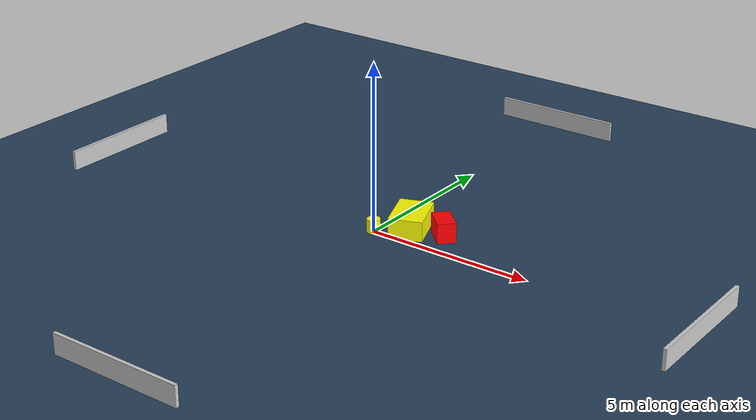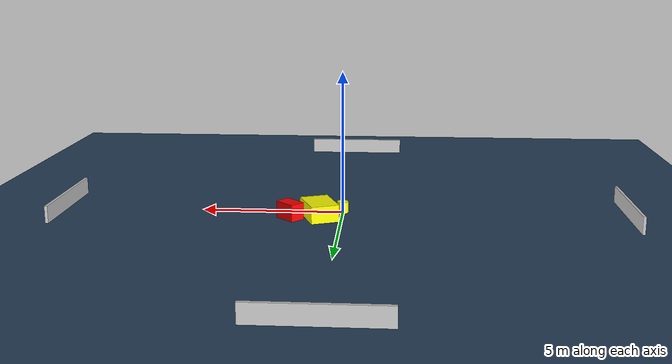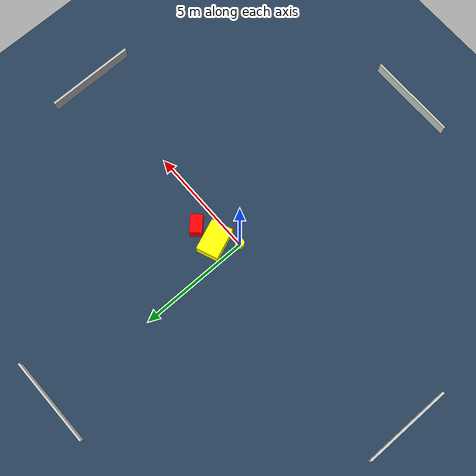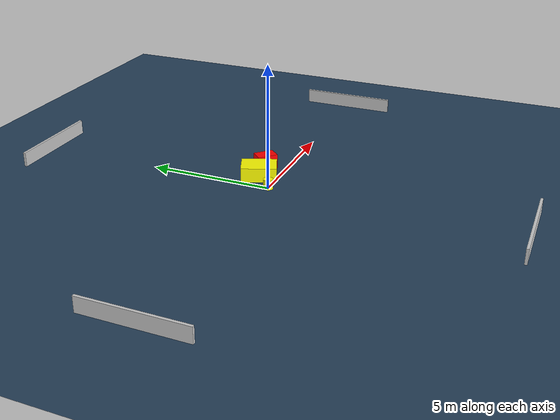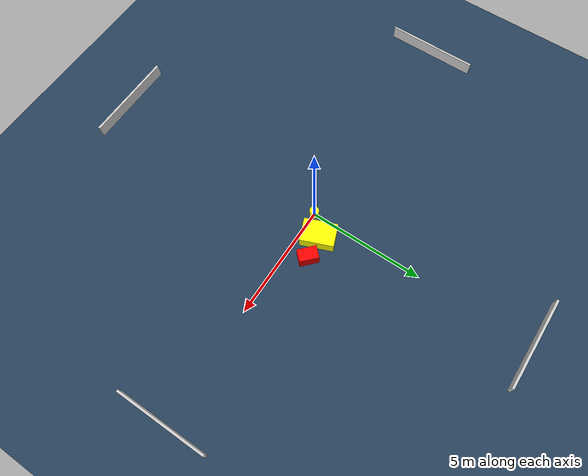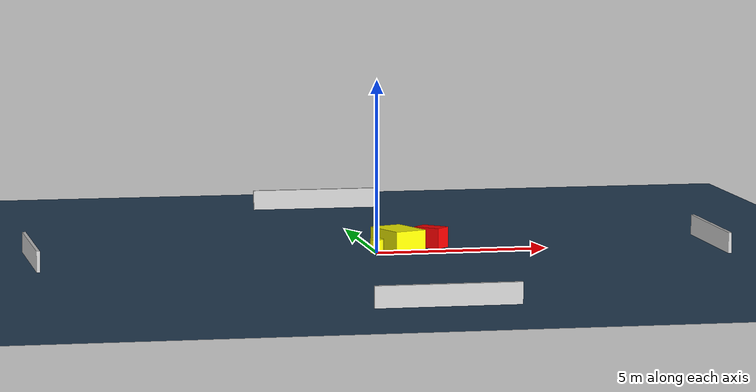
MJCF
<?xml version="1.0" ?>
<mujoco model="generated_environment">
  <option timestep="0.01" integrator="RK4" cone="elliptic"/>
  <default>
    <geom density="1"/>
  </default>
  <asset>
    <texture builtin="gradient" height="3072" name="skybox" rgb1="0.3 0.5 0.7" rgb2="0 0 0" type="skybox" width="512"/>
    <texture builtin="checker" height="300" name="groundplane" rgb1="0.2 0.3 0.4" rgb2="0.1 0.2 0.3" type="2d" width="300"/>
    <material name="groundplane" reflectance="0.2" texrepeat="5 5" texture="groundplane"/>
  </asset>
  <worldbody>
    <light dir="0 0 -1" directional="true" pos="0 0 1.5"/>
    <geom condim="3" friction="0.5 0.005 0.001" material="groundplane" name="floor" pos="0 0 0" size="0 0 0.05" type="plane"/>
    <body name="walls">
      <geom name="wall_1" condim="4" pos="-10.0 0.0 0.3" rgba="0.800000011920929 0.800000011920929 0.800000011920929 1.0" size="0.05 2.0 0.3" type="box"/>
      <geom name="wall_2" condim="4" pos="10.0 0.0 0.3" rgba="0.800000011920929 0.800000011920929 0.800000011920929 1.0" size="0.05 2.0 0.3" type="box"/>
      <geom name="wall_3" condim="4" pos="0.0 -10.0 0.3" rgba="0.800000011920929 0.800000011920929 0.800000011920929 1.0" size="2.0 0.05 0.3" type="box"/>
      <geom name="wall_4" condim="4" pos="0.0 10.0 0.3" rgba="0.800000011920929 0.800000011920929 0.800000011920929 1.0" size="2.0 0.05 0.3" type="box"/>
    </body>
    <body name="robot">
      <joint name="joint_x" type="slide" pos="0 0 0" axis="1 0 0"/>
      <joint name="joint_y" type="slide" pos="0 0 0" axis="0 1 0"/>
      <geom name="robot" type="cylinder" pos="0.0 0.0 0.2" size="0.2 0.2 0.0" mass="5.0" friction="1.0 0.005 0.0001" condim="4" rgba="1.0 1.0 0.0 1.0"/>
    </body>
    <body name="obstacle_1_movable">
      <geom name="obstacle_1_movable" condim="4" pos="0.7682290172888007 0.7202693880099953 0.3" euler="0 0 21.540867808015633" friction="0.0 0.005 0.001" rgba="1.0 1.0 0.0 1.0" size="0.4968795886964336 0.7092802486840359 0.3" type="box" mass="0.1"/>
      <joint type="free"/>
    </body>
    <body name="obstacle_2_static">
      <geom name="obstacle_2_static" condim="4" pos="1.781967456957268 0.8665805535165998 0.3" euler="0 0 46.55087272042957" friction="0.0 0.005 0.001" rgba="1.0 0.0 0.0 1.0" size="0.27005229274307857 0.41136996296566813 0.3" type="box"/>
    </body>
  </worldbody>
  <actuator>
    <motor name="actuator_x" joint="joint_x" gear="1" ctrlrange="-1 1"/>
    <motor name="actuator_y" joint="joint_y" gear="1" ctrlrange="-1 1"/>
  </actuator>
</mujoco>
